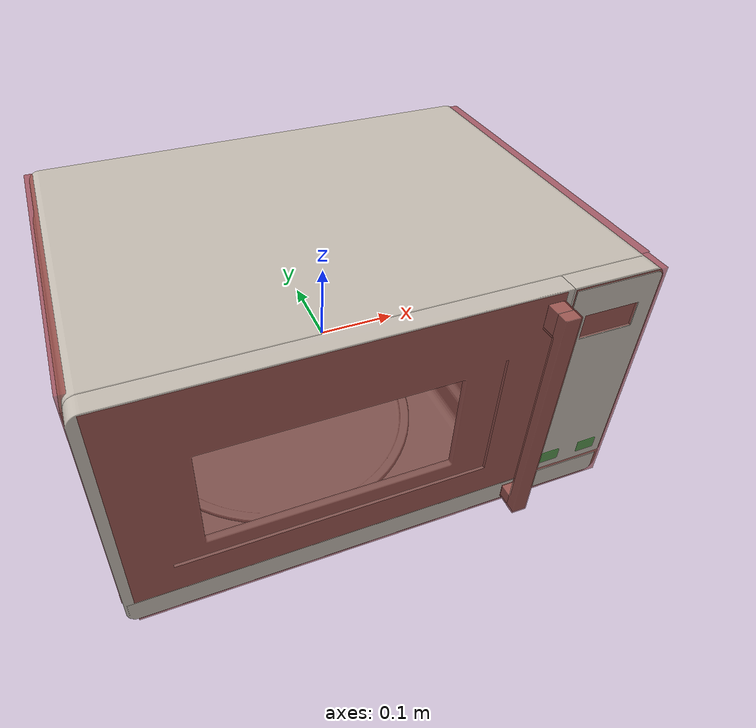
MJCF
<?xml version='1.0' encoding='UTF-8'?>
<mujoco model="model">
  <option timestep="0.002" gravity="0.0 0.0 -9.81"/>
  <compiler angle="radian"/>
  <asset>
    <mesh file="visuals/door.obj" name="door_vis"/>
    <mesh file="visuals/door_Clear.obj" name="door_Clear_vis"/>
    <mesh file="visuals/Body001.obj" name="Body001_vis"/>
    <mesh file="visuals/Disc001.obj" name="Disc001_vis"/>
    <texture file="visuals/T_BC001.png" name="Body001_material" type="2d"/>
    <material name="Body001_material" rgba="1 1 1 1.0" texture="Body001_material" shininess="0.4472135901451111"
              specular="2"/>
    <texture file="visuals/T_BC001.png" name="door_material" type="2d"/>
    <material name="door_material" rgba="1 1 1 1.0" texture="door_material" shininess="0.4472135901451111"
              specular="1"/>
    <material name="door_Clear_material"
              rgba="0.036379650235176086 0.036379650235176086 0.036379650235176086 0.800000011920929"
              shininess="0.4472135901451111" specular="0.3103448502657381"/>
    <texture file="visuals/T_BC001.png" name="Disc001_material" type="2d"/>
    <material name="Disc001_material" rgba="1 1 1 1.0" texture="Disc001_material" shininess="0.4472135901451111"
              specular="2"/>
  </asset>
  <default>
    <default class="visual">
      <geom conaffinity="0" contype="0" group="1" type="mesh"/>
    </default>
    <default class="collision">
      <geom group="0" rgba="0.5 0 0 0.5"/>
    </default>
    <default class="spawn">
      <geom group="0" rgba="1 1 1 0.5" contype="0" conaffinity="0"/>
      <site group="0" rgba="1 1 1 0.5"/>
    </default>
    <default class="region">
      <geom group="1" conaffinity="0" contype="0" rgba="0 1 0 0"/>
    </default>
  </default>
  <worldbody>
    <body>
      <body name="object">
        <body name="frame">
          <geom class="collision" type="box" pos="0.22645536 -0.22101106 -0.10018514"
                size="0.012777555733919144 0.0006464432226493955 0.008160201832652092" quat="1.0 0.0 0.0 0.0"
                name="start_button" rgba="0.0 0.5 0 0.5"/>
          <geom class="collision" type="cylinder" pos="-0.06828439 0.01216789 -0.13475317"
                size="0.19363492727279663 0.0022339257411658764" quat="1.0 0.0 0.0 0.0" name="tray" rgba="0 1 0 0.5"/>
          <geom class="collision" type="box" pos="0.28162757 -0.22101106 -0.10018514"
                size="0.01277761161327362 0.0006464432226493955 0.008160253055393696" quat="1.0 0.0 0.0 0.0"
                name="stop_button" rgba="0.0 0.5 0 0.5"/>
          <geom mesh="Body001_vis" type="mesh" solimp="0.998 0.998 0.001" solref="0.001 1" friction="0.95 0.3 0.1"
                class="visual" material="Body001_material"/>
          <geom class="collision" type="box" pos="-0.00276034 0.03017744 0.15883483"
                size="0.3193860650062561 0.21707694232463837 0.010552940890192986" quat="1.0 0.0 0.0 0.0"/>
          <geom class="collision" type="box" pos="-0.00276034 0.03017744 -0.16096473"
                size="0.3193860650062561 0.21707694232463837 0.009933846071362495" quat="1.0 0.0 0.0 0.0"/>
          <geom class="collision" type="box" pos="-0.00276034 0.22731069 0.00073458"
                size="0.3193860650062561 0.0199437253177166 0.15000544488430023" quat="1.0 0.0 0.0 0.0"/>
          <geom class="collision" type="box" pos="-0.30465826 0.01357096 0.00073458"
                size="0.0174881424754858 0.19948627054691315 0.15000544488430023" quat="1.0 0.0 0.0 0.0"/>
          <geom class="collision" type="box" pos="0.24615103 0.01271480 0.00073458"
                size="0.07609153538942337 0.20034241676330566 0.15000544488430023" quat="1.0 0.0 0.0 0.0"/>
          <geom class="collision" type="box" pos="0.25533578 -0.20322016 0.00274799"
                size="0.058713797479867935 0.01570231094956398 0.16663974523544312" quat="1.0 0.0 0.0 0.0"/>
          <geom class="collision" type="box" pos="-0.04766119 0.02613680 0.14472415"
                size="0.1739961951971054 0.1543353646993637 0.009870488196611404" quat="1.0 0.0 0.0 0.0"/>
          <body name="door">
            <joint axis="0.0 0.0 1.0" pos="-0.30465236 -0.20649810 -0.00107514" limited="true" name="microjoint"
                   range="-1.5707963267948966 0.0" type="hinge" damping="1" frictionloss="1" armature=".01"
                   stiffness="0.05"/>
            <geom mesh="door_vis" type="mesh" solimp="0.998 0.998 0.001" solref="0.001 1" friction="0.95 0.3 0.1"
                  class="visual" material="door_material"/>
            <geom class="collision" type="box" pos="-0.06346845 -0.21485309 0.00456363"
                  size="0.19451387226581573 0.0041238246485590935 0.09108439832925797" quat="1.0 0.0 0.0 0.0"/>
            <geom class="collision" type="box" pos="-0.05997719 -0.20487595 0.00320233"
                  size="0.24592143297195435 0.014458371326327324 0.16668809950351715" quat="1.0 0.0 0.0 0.0"
                  name="door_main"/>
            <geom class="collision" type="box" pos="0.17387959 -0.24299258 0.00320359"
                  size="0.010044670663774014 0.006563208531588316 0.15723052620887756" quat="1.0 0.0 0.0 0.0"
                  name="door_handle_main"/>
            <geom class="collision" type="box" pos="0.17387959 -0.22775877 0.14441951"
                  size="0.010044670663774014 0.0077226473949849606 0.016014620661735535" quat="1.0 0.0 0.0 0.0"/>
            <geom class="collision" type="box" pos="0.17387959 -0.22775877 -0.14342157"
                  size="0.010044670663774014 0.0077226473949849606 0.010049714706838131" quat="1.0 0.0 0.0 0.0"/>
            <!-- Site for door handle -->
            <site name="door_handle" pos="0.17387959 -0.24299258 0.00320359" size="0.02" rgba="0 0 1 0"/>
            <body name="door_Clear">
              <geom mesh="door_Clear_vis" type="mesh" solimp="0.998 0.998 0.001" solref="0.001 1"
                    friction="0.95 0.3 0.1" class="visual" material="door_Clear_material"/>
              <geom class="collision" type="box" pos="-0.06346845 -0.21485309 0.00456363"
                    size="0.19451387226581573 0.0041238246485590935 0.09108439832925797" quat="1.0 0.0 0.0 0.0"/>
            </body>
          </body>
          <body name="Disc001">
            <joint axis="0.0 0.0 1.0" pos="-0.06811624 0.01224639 -0.14107227" limited="false" name="Disc001_joint"
                   range="0 360" type="hinge" damping="1" frictionloss="1" armature=".01" stiffness="0.05"/>
            <geom mesh="Disc001_vis" type="mesh" solimp="0.998 0.998 0.001" solref="0.001 1" friction="0.95 0.3 0.1"
                  class="visual" material="Disc001_material"/>
            <geom class="collision" type="cylinder" pos="-0.06828439 0.01216789 -0.14120969"
                  size="0.19363567233085632 0.0029786841478198767" quat="1.0 0.0 0.0 0.0"/>
          </body>
          <geom class="region" name="reg_int" type="box"
                pos="-0.05879585999999999 0.010252330000000004 -0.0020739899999999978"
                size="0.22302439000000002 0.19176571 0.13144526"/>
          <geom class="region" name="reg_main" type="box"
                pos="-4.999999997368221e-09 0.014695399999999997 6.450000000005063e-06"
                size="0.32554982499999996 0.23548172 0.17326541"/>
          <geom class="region" name="reg_tray" type="cylinder" pos="-0.06828439 0.01216789 -0.0015739871294170593"
                size="0.19363492727279663 0.12994525712941707"/>
          <!-- Sites for important regions -->
          <site name="interior" pos="-0.05879585999999999 0.010252330000000004 -0.0020739899999999978" size="0.02"
                rgba="0 1 0 0"/>
          <site name="tray" pos="-0.06828439 0.01216789 -0.0015739871294170593" size="0.02" rgba="1 0 0 0"/>
        </body>
      </body>
      <site name="bottom_site" pos="0 0 -0.18" rgba="0 0 0 0" size="0.005"/>
      <site name="top_site" pos="0 0 0.18" rgba="0 0 0 0" size="0.005"/>
      <site name="horizontal_radius_site" pos="0.3 0 0" rgba="0 0 0 0" size="0.1"/>
    </body>
  </worldbody>
  <actuator>
    <motor name="microjoint_actuator" joint="microjoint" gear="10"/>
    <motor name="Disc001_joint_actuator" joint="Disc001_joint" gear="10"/>
  </actuator>
</mujoco>
